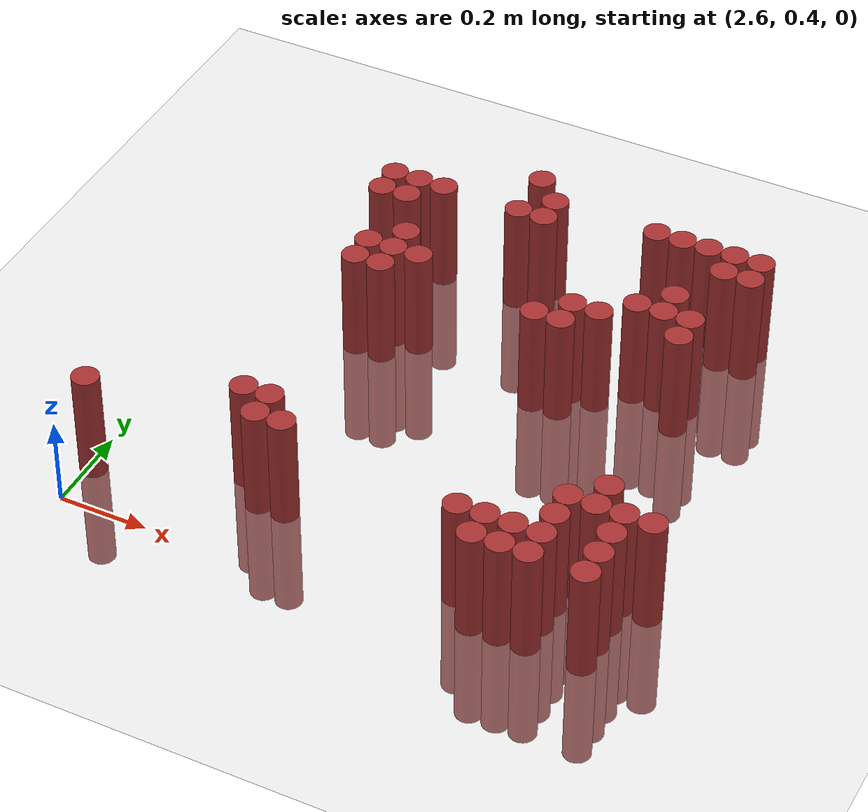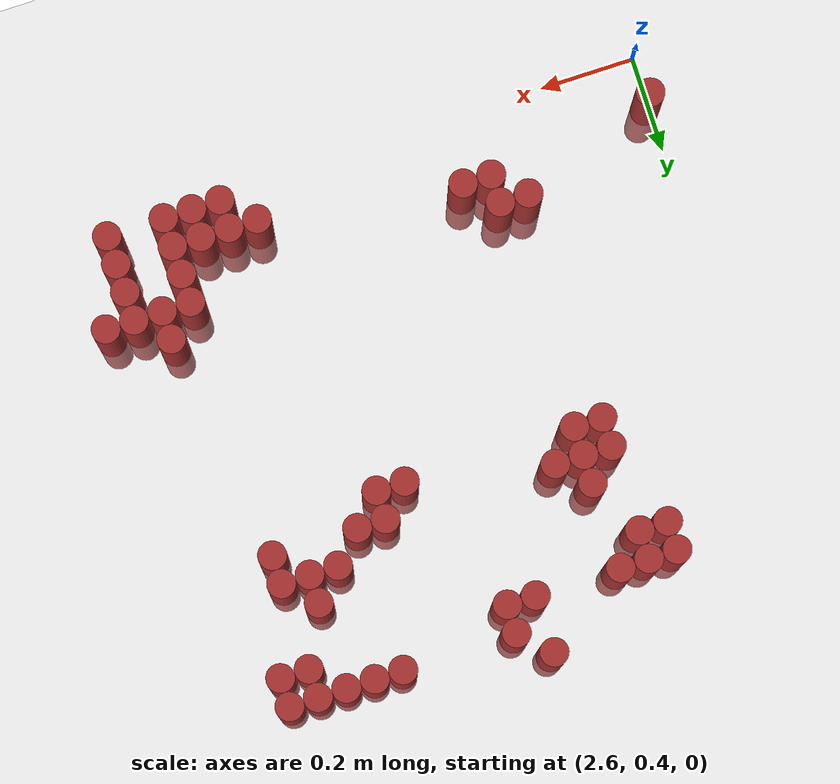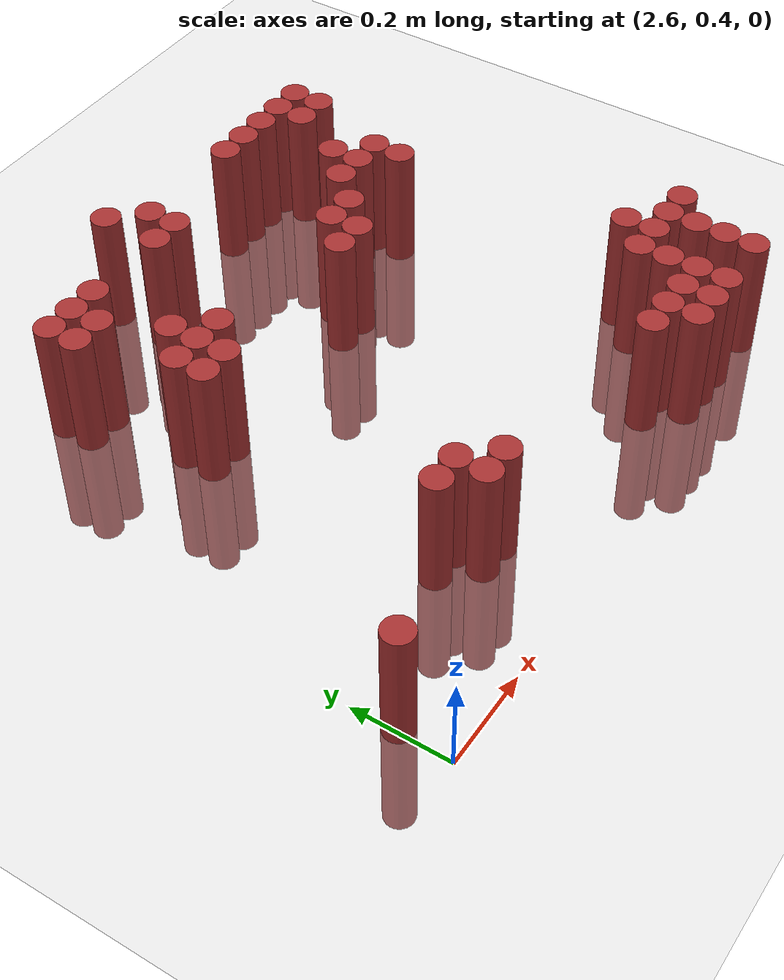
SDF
<sdf version="1.6">
 <world name="default">
  <model name="ground_plane">
   <static>1</static>
   <link name="link">
    <collision name="collision">
     <geometry><plane><normal>0 0 1</normal><size>100 100</size></plane></geometry>
     <surface><friction><ode><mu>100</mu><mu2>50</mu2></ode></friction></surface>
    </collision>
    <visual name="visual">
     <cast_shadows>0</cast_shadows>
     <geometry><plane><normal>0 0 1</normal><size>100 100</size></plane></geometry>
     <material>
      <script><uri>file://media/materials/scripts/gazebo.material</uri><name>Gazebo/Grey</name></script>
     </material>
    </visual>
   </link>
  </model>
  <model name="unit_cylinder_156">
   <static>1</static>
   <pose>3.150000 1.530000 0.000000 0.000000 0.000000 0.000000</pose>
   <link name="link">
    <inertial>
     <mass>1</mass>
     <inertia><ixx>0.145833</ixx><ixy>0</ixy><ixz>0</ixz><iyy>0.145833</iyy><iyz>0</iyz><izz>0.125</izz></inertia>
    </inertial>
    <collision name="collision">
     <geometry><cylinder><radius>0.030000</radius><length>0.5</length></cylinder></geometry>
    </collision>
    <visual name="visual">
     <geometry><cylinder><radius>0.030000</radius><length>0.5</length></cylinder></geometry>
     <material>
      <ambient>0.648000 0.192000 0.192000 1</ambient>
      <diffuse>0.648000 0.192000 0.192000 1</diffuse>
     </material>
     <material>
      <script><name>Gazebo/Grey</name><uri>file://media/materials/scripts/gazebo.material</uri></script>
     </material>
    </visual>
   </link>
  </model>
  <model name="unit_cylinder_165">
   <static>1</static>
   <pose>3.210000 1.470000 0.000000 0.000000 0.000000 0.000000</pose>
   <link name="link">
    <inertial>
     <mass>1</mass>
     <inertia><ixx>0.145833</ixx><ixy>0</ixy><ixz>0</ixz><iyy>0.145833</iyy><iyz>0</iyz><izz>0.125</izz></inertia>
    </inertial>
    <collision name="collision">
     <geometry><cylinder><radius>0.030000</radius><length>0.5</length></cylinder></geometry>
    </collision>
    <visual name="visual">
     <geometry><cylinder><radius>0.030000</radius><length>0.5</length></cylinder></geometry>
     <material>
      <ambient>0.648000 0.192000 0.192000 1</ambient>
      <diffuse>0.648000 0.192000 0.192000 1</diffuse>
     </material>
     <material>
      <script><name>Gazebo/Grey</name><uri>file://media/materials/scripts/gazebo.material</uri></script>
     </material>
    </visual>
   </link>
  </model>
  <model name="unit_cylinder_166">
   <static>1</static>
   <pose>3.450000 1.470000 0.000000 0.000000 0.000000 0.000000</pose>
   <link name="link">
    <inertial>
     <mass>1</mass>
     <inertia><ixx>0.145833</ixx><ixy>0</ixy><ixz>0</ixz><iyy>0.145833</iyy><iyz>0</iyz><izz>0.125</izz></inertia>
    </inertial>
    <collision name="collision">
     <geometry><cylinder><radius>0.030000</radius><length>0.5</length></cylinder></geometry>
    </collision>
    <visual name="visual">
     <geometry><cylinder><radius>0.030000</radius><length>0.5</length></cylinder></geometry>
     <material>
      <ambient>0.648000 0.192000 0.192000 1</ambient>
      <diffuse>0.648000 0.192000 0.192000 1</diffuse>
     </material>
     <material>
      <script><name>Gazebo/Grey</name><uri>file://media/materials/scripts/gazebo.material</uri></script>
     </material>
    </visual>
   </link>
  </model>
  <model name="unit_cylinder_167">
   <static>1</static>
   <pose>3.510000 1.470000 0.000000 0.000000 0.000000 0.000000</pose>
   <link name="link">
    <inertial>
     <mass>1</mass>
     <inertia><ixx>0.145833</ixx><ixy>0</ixy><ixz>0</ixz><iyy>0.145833</iyy><iyz>0</iyz><izz>0.125</izz></inertia>
    </inertial>
    <collision name="collision">
     <geometry><cylinder><radius>0.030000</radius><length>0.5</length></cylinder></geometry>
    </collision>
    <visual name="visual">
     <geometry><cylinder><radius>0.030000</radius><length>0.5</length></cylinder></geometry>
     <material>
      <ambient>0.648000 0.192000 0.192000 1</ambient>
      <diffuse>0.648000 0.192000 0.192000 1</diffuse>
     </material>
     <material>
      <script><name>Gazebo/Grey</name><uri>file://media/materials/scripts/gazebo.material</uri></script>
     </material>
    </visual>
   </link>
  </model>
  <model name="unit_cylinder_168">
   <static>1</static>
   <pose>3.570000 1.470000 0.000000 0.000000 0.000000 0.000000</pose>
   <link name="link">
    <inertial>
     <mass>1</mass>
     <inertia><ixx>0.145833</ixx><ixy>0</ixy><ixz>0</ixz><iyy>0.145833</iyy><iyz>0</iyz><izz>0.125</izz></inertia>
    </inertial>
    <collision name="collision">
     <geometry><cylinder><radius>0.030000</radius><length>0.5</length></cylinder></geometry>
    </collision>
    <visual name="visual">
     <geometry><cylinder><radius>0.030000</radius><length>0.5</length></cylinder></geometry>
     <material>
      <ambient>0.648000 0.192000 0.192000 1</ambient>
      <diffuse>0.648000 0.192000 0.192000 1</diffuse>
     </material>
     <material>
      <script><name>Gazebo/Grey</name><uri>file://media/materials/scripts/gazebo.material</uri></script>
     </material>
    </visual>
   </link>
  </model>
  <model name="unit_cylinder_169">
   <static>1</static>
   <pose>3.630000 1.470000 0.000000 0.000000 0.000000 0.000000</pose>
   <link name="link">
    <inertial>
     <mass>1</mass>
     <inertia><ixx>0.145833</ixx><ixy>0</ixy><ixz>0</ixz><iyy>0.145833</iyy><iyz>0</iyz><izz>0.125</izz></inertia>
    </inertial>
    <collision name="collision">
     <geometry><cylinder><radius>0.030000</radius><length>0.5</length></cylinder></geometry>
    </collision>
    <visual name="visual">
     <geometry><cylinder><radius>0.030000</radius><length>0.5</length></cylinder></geometry>
     <material>
      <ambient>0.648000 0.192000 0.192000 1</ambient>
      <diffuse>0.648000 0.192000 0.192000 1</diffuse>
     </material>
     <material>
      <script><name>Gazebo/Grey</name><uri>file://media/materials/scripts/gazebo.material</uri></script>
     </material>
    </visual>
   </link>
  </model>
  <model name="unit_cylinder_170">
   <static>1</static>
   <pose>3.690000 1.470000 0.000000 0.000000 0.000000 0.000000</pose>
   <link name="link">
    <inertial>
     <mass>1</mass>
     <inertia><ixx>0.145833</ixx><ixy>0</ixy><ixz>0</ixz><iyy>0.145833</iyy><iyz>0</iyz><izz>0.125</izz></inertia>
    </inertial>
    <collision name="collision">
     <geometry><cylinder><radius>0.030000</radius><length>0.5</length></cylinder></geometry>
    </collision>
    <visual name="visual">
     <geometry><cylinder><radius>0.030000</radius><length>0.5</length></cylinder></geometry>
     <material>
      <ambient>0.648000 0.192000 0.192000 1</ambient>
      <diffuse>0.648000 0.192000 0.192000 1</diffuse>
     </material>
     <material>
      <script><name>Gazebo/Grey</name><uri>file://media/materials/scripts/gazebo.material</uri></script>
     </material>
    </visual>
   </link>
  </model>
  <model name="unit_cylinder_172">
   <static>1</static>
   <pose>2.850000 1.410000 0.000000 0.000000 0.000000 0.000000</pose>
   <link name="link">
    <inertial>
     <mass>1</mass>
     <inertia><ixx>0.145833</ixx><ixy>0</ixy><ixz>0</ixz><iyy>0.145833</iyy><iyz>0</iyz><izz>0.125</izz></inertia>
    </inertial>
    <collision name="collision">
     <geometry><cylinder><radius>0.030000</radius><length>0.5</length></cylinder></geometry>
    </collision>
    <visual name="visual">
     <geometry><cylinder><radius>0.030000</radius><length>0.5</length></cylinder></geometry>
     <material>
      <ambient>0.648000 0.192000 0.192000 1</ambient>
      <diffuse>0.648000 0.192000 0.192000 1</diffuse>
     </material>
     <material>
      <script><name>Gazebo/Grey</name><uri>file://media/materials/scripts/gazebo.material</uri></script>
     </material>
    </visual>
   </link>
  </model>
  <model name="unit_cylinder_173">
   <static>1</static>
   <pose>2.910000 1.410000 0.000000 0.000000 0.000000 0.000000</pose>
   <link name="link">
    <inertial>
     <mass>1</mass>
     <inertia><ixx>0.145833</ixx><ixy>0</ixy><ixz>0</ixz><iyy>0.145833</iyy><iyz>0</iyz><izz>0.125</izz></inertia>
    </inertial>
    <collision name="collision">
     <geometry><cylinder><radius>0.030000</radius><length>0.5</length></cylinder></geometry>
    </collision>
    <visual name="visual">
     <geometry><cylinder><radius>0.030000</radius><length>0.5</length></cylinder></geometry>
     <material>
      <ambient>0.648000 0.192000 0.192000 1</ambient>
      <diffuse>0.648000 0.192000 0.192000 1</diffuse>
     </material>
     <material>
      <script><name>Gazebo/Grey</name><uri>file://media/materials/scripts/gazebo.material</uri></script>
     </material>
    </visual>
   </link>
  </model>
  <model name="unit_cylinder_174">
   <static>1</static>
   <pose>2.970000 1.410000 0.000000 0.000000 0.000000 0.000000</pose>
   <link name="link">
    <inertial>
     <mass>1</mass>
     <inertia><ixx>0.145833</ixx><ixy>0</ixy><ixz>0</ixz><iyy>0.145833</iyy><iyz>0</iyz><izz>0.125</izz></inertia>
    </inertial>
    <collision name="collision">
     <geometry><cylinder><radius>0.030000</radius><length>0.5</length></cylinder></geometry>
    </collision>
    <visual name="visual">
     <geometry><cylinder><radius>0.030000</radius><length>0.5</length></cylinder></geometry>
     <material>
      <ambient>0.648000 0.192000 0.192000 1</ambient>
      <diffuse>0.648000 0.192000 0.192000 1</diffuse>
     </material>
     <material>
      <script><name>Gazebo/Grey</name><uri>file://media/materials/scripts/gazebo.material</uri></script>
     </material>
    </visual>
   </link>
  </model>
  <model name="unit_cylinder_175">
   <static>1</static>
   <pose>3.150000 1.410000 0.000000 0.000000 0.000000 0.000000</pose>
   <link name="link">
    <inertial>
     <mass>1</mass>
     <inertia><ixx>0.145833</ixx><ixy>0</ixy><ixz>0</ixz><iyy>0.145833</iyy><iyz>0</iyz><izz>0.125</izz></inertia>
    </inertial>
    <collision name="collision">
     <geometry><cylinder><radius>0.030000</radius><length>0.5</length></cylinder></geometry>
    </collision>
    <visual name="visual">
     <geometry><cylinder><radius>0.030000</radius><length>0.5</length></cylinder></geometry>
     <material>
      <ambient>0.648000 0.192000 0.192000 1</ambient>
      <diffuse>0.648000 0.192000 0.192000 1</diffuse>
     </material>
     <material>
      <script><name>Gazebo/Grey</name><uri>file://media/materials/scripts/gazebo.material</uri></script>
     </material>
    </visual>
   </link>
  </model>
  <model name="unit_cylinder_176">
   <static>1</static>
   <pose>3.210000 1.410000 0.000000 0.000000 0.000000 0.000000</pose>
   <link name="link">
    <inertial>
     <mass>1</mass>
     <inertia><ixx>0.145833</ixx><ixy>0</ixy><ixz>0</ixz><iyy>0.145833</iyy><iyz>0</iyz><izz>0.125</izz></inertia>
    </inertial>
    <collision name="collision">
     <geometry><cylinder><radius>0.030000</radius><length>0.5</length></cylinder></geometry>
    </collision>
    <visual name="visual">
     <geometry><cylinder><radius>0.030000</radius><length>0.5</length></cylinder></geometry>
     <material>
      <ambient>0.648000 0.192000 0.192000 1</ambient>
      <diffuse>0.648000 0.192000 0.192000 1</diffuse>
     </material>
     <material>
      <script><name>Gazebo/Grey</name><uri>file://media/materials/scripts/gazebo.material</uri></script>
     </material>
    </visual>
   </link>
  </model>
  <model name="unit_cylinder_177">
   <static>1</static>
   <pose>3.630000 1.410000 0.000000 0.000000 0.000000 0.000000</pose>
   <link name="link">
    <inertial>
     <mass>1</mass>
     <inertia><ixx>0.145833</ixx><ixy>0</ixy><ixz>0</ixz><iyy>0.145833</iyy><iyz>0</iyz><izz>0.125</izz></inertia>
    </inertial>
    <collision name="collision">
     <geometry><cylinder><radius>0.030000</radius><length>0.5</length></cylinder></geometry>
    </collision>
    <visual name="visual">
     <geometry><cylinder><radius>0.030000</radius><length>0.5</length></cylinder></geometry>
     <material>
      <ambient>0.648000 0.192000 0.192000 1</ambient>
      <diffuse>0.648000 0.192000 0.192000 1</diffuse>
     </material>
     <material>
      <script><name>Gazebo/Grey</name><uri>file://media/materials/scripts/gazebo.material</uri></script>
     </material>
    </visual>
   </link>
  </model>
  <model name="unit_cylinder_178">
   <static>1</static>
   <pose>3.690000 1.410000 0.000000 0.000000 0.000000 0.000000</pose>
   <link name="link">
    <inertial>
     <mass>1</mass>
     <inertia><ixx>0.145833</ixx><ixy>0</ixy><ixz>0</ixz><iyy>0.145833</iyy><iyz>0</iyz><izz>0.125</izz></inertia>
    </inertial>
    <collision name="collision">
     <geometry><cylinder><radius>0.030000</radius><length>0.5</length></cylinder></geometry>
    </collision>
    <visual name="visual">
     <geometry><cylinder><radius>0.030000</radius><length>0.5</length></cylinder></geometry>
     <material>
      <ambient>0.648000 0.192000 0.192000 1</ambient>
      <diffuse>0.648000 0.192000 0.192000 1</diffuse>
     </material>
     <material>
      <script><name>Gazebo/Grey</name><uri>file://media/materials/scripts/gazebo.material</uri></script>
     </material>
    </visual>
   </link>
  </model>
  <model name="unit_cylinder_179">
   <static>1</static>
   <pose>2.850000 1.350000 0.000000 0.000000 0.000000 0.000000</pose>
   <link name="link">
    <inertial>
     <mass>1</mass>
     <inertia><ixx>0.145833</ixx><ixy>0</ixy><ixz>0</ixz><iyy>0.145833</iyy><iyz>0</iyz><izz>0.125</izz></inertia>
    </inertial>
    <collision name="collision">
     <geometry><cylinder><radius>0.030000</radius><length>0.5</length></cylinder></geometry>
    </collision>
    <visual name="visual">
     <geometry><cylinder><radius>0.030000</radius><length>0.5</length></cylinder></geometry>
     <material>
      <ambient>0.648000 0.192000 0.192000 1</ambient>
      <diffuse>0.648000 0.192000 0.192000 1</diffuse>
     </material>
     <material>
      <script><name>Gazebo/Grey</name><uri>file://media/materials/scripts/gazebo.material</uri></script>
     </material>
    </visual>
   </link>
  </model>
  <model name="unit_cylinder_180">
   <static>1</static>
   <pose>2.910000 1.350000 0.000000 0.000000 0.000000 0.000000</pose>
   <link name="link">
    <inertial>
     <mass>1</mass>
     <inertia><ixx>0.145833</ixx><ixy>0</ixy><ixz>0</ixz><iyy>0.145833</iyy><iyz>0</iyz><izz>0.125</izz></inertia>
    </inertial>
    <collision name="collision">
     <geometry><cylinder><radius>0.030000</radius><length>0.5</length></cylinder></geometry>
    </collision>
    <visual name="visual">
     <geometry><cylinder><radius>0.030000</radius><length>0.5</length></cylinder></geometry>
     <material>
      <ambient>0.648000 0.192000 0.192000 1</ambient>
      <diffuse>0.648000 0.192000 0.192000 1</diffuse>
     </material>
     <material>
      <script><name>Gazebo/Grey</name><uri>file://media/materials/scripts/gazebo.material</uri></script>
     </material>
    </visual>
   </link>
  </model>
  <model name="unit_cylinder_181">
   <static>1</static>
   <pose>3.570000 1.290000 0.000000 0.000000 0.000000 0.000000</pose>
   <link name="link">
    <inertial>
     <mass>1</mass>
     <inertia><ixx>0.145833</ixx><ixy>0</ixy><ixz>0</ixz><iyy>0.145833</iyy><iyz>0</iyz><izz>0.125</izz></inertia>
    </inertial>
    <collision name="collision">
     <geometry><cylinder><radius>0.030000</radius><length>0.5</length></cylinder></geometry>
    </collision>
    <visual name="visual">
     <geometry><cylinder><radius>0.030000</radius><length>0.5</length></cylinder></geometry>
     <material>
      <ambient>0.648000 0.192000 0.192000 1</ambient>
      <diffuse>0.648000 0.192000 0.192000 1</diffuse>
     </material>
     <material>
      <script><name>Gazebo/Grey</name><uri>file://media/materials/scripts/gazebo.material</uri></script>
     </material>
    </visual>
   </link>
  </model>
  <model name="unit_cylinder_182">
   <static>1</static>
   <pose>2.970000 1.230000 0.000000 0.000000 0.000000 0.000000</pose>
   <link name="link">
    <inertial>
     <mass>1</mass>
     <inertia><ixx>0.145833</ixx><ixy>0</ixy><ixz>0</ixz><iyy>0.145833</iyy><iyz>0</iyz><izz>0.125</izz></inertia>
    </inertial>
    <collision name="collision">
     <geometry><cylinder><radius>0.030000</radius><length>0.5</length></cylinder></geometry>
    </collision>
    <visual name="visual">
     <geometry><cylinder><radius>0.030000</radius><length>0.5</length></cylinder></geometry>
     <material>
      <ambient>0.648000 0.192000 0.192000 1</ambient>
      <diffuse>0.648000 0.192000 0.192000 1</diffuse>
     </material>
     <material>
      <script><name>Gazebo/Grey</name><uri>file://media/materials/scripts/gazebo.material</uri></script>
     </material>
    </visual>
   </link>
  </model>
  <model name="unit_cylinder_183">
   <static>1</static>
   <pose>3.510000 1.230000 0.000000 0.000000 0.000000 0.000000</pose>
   <link name="link">
    <inertial>
     <mass>1</mass>
     <inertia><ixx>0.145833</ixx><ixy>0</ixy><ixz>0</ixz><iyy>0.145833</iyy><iyz>0</iyz><izz>0.125</izz></inertia>
    </inertial>
    <collision name="collision">
     <geometry><cylinder><radius>0.030000</radius><length>0.5</length></cylinder></geometry>
    </collision>
    <visual name="visual">
     <geometry><cylinder><radius>0.030000</radius><length>0.5</length></cylinder></geometry>
     <material>
      <ambient>0.648000 0.192000 0.192000 1</ambient>
      <diffuse>0.648000 0.192000 0.192000 1</diffuse>
     </material>
     <material>
      <script><name>Gazebo/Grey</name><uri>file://media/materials/scripts/gazebo.material</uri></script>
     </material>
    </visual>
   </link>
  </model>
  <model name="unit_cylinder_184">
   <static>1</static>
   <pose>3.570000 1.230000 0.000000 0.000000 0.000000 0.000000</pose>
   <link name="link">
    <inertial>
     <mass>1</mass>
     <inertia><ixx>0.145833</ixx><ixy>0</ixy><ixz>0</ixz><iyy>0.145833</iyy><iyz>0</iyz><izz>0.125</izz></inertia>
    </inertial>
    <collision name="collision">
     <geometry><cylinder><radius>0.030000</radius><length>0.5</length></cylinder></geometry>
    </collision>
    <visual name="visual">
     <geometry><cylinder><radius>0.030000</radius><length>0.5</length></cylinder></geometry>
     <material>
      <ambient>0.648000 0.192000 0.192000 1</ambient>
      <diffuse>0.648000 0.192000 0.192000 1</diffuse>
     </material>
     <material>
      <script><name>Gazebo/Grey</name><uri>file://media/materials/scripts/gazebo.material</uri></script>
     </material>
    </visual>
   </link>
  </model>
  <model name="unit_cylinder_185">
   <static>1</static>
   <pose>3.630000 1.230000 0.000000 0.000000 0.000000 0.000000</pose>
   <link name="link">
    <inertial>
     <mass>1</mass>
     <inertia><ixx>0.145833</ixx><ixy>0</ixy><ixz>0</ixz><iyy>0.145833</iyy><iyz>0</iyz><izz>0.125</izz></inertia>
    </inertial>
    <collision name="collision">
     <geometry><cylinder><radius>0.030000</radius><length>0.5</length></cylinder></geometry>
    </collision>
    <visual name="visual">
     <geometry><cylinder><radius>0.030000</radius><length>0.5</length></cylinder></geometry>
     <material>
      <ambient>0.648000 0.192000 0.192000 1</ambient>
      <diffuse>0.648000 0.192000 0.192000 1</diffuse>
     </material>
     <material>
      <script><name>Gazebo/Grey</name><uri>file://media/materials/scripts/gazebo.material</uri></script>
     </material>
    </visual>
   </link>
  </model>
  <model name="unit_cylinder_186">
   <static>1</static>
   <pose>2.910000 1.170000 0.000000 0.000000 0.000000 0.000000</pose>
   <link name="link">
    <inertial>
     <mass>1</mass>
     <inertia><ixx>0.145833</ixx><ixy>0</ixy><ixz>0</ixz><iyy>0.145833</iyy><iyz>0</iyz><izz>0.125</izz></inertia>
    </inertial>
    <collision name="collision">
     <geometry><cylinder><radius>0.030000</radius><length>0.5</length></cylinder></geometry>
    </collision>
    <visual name="visual">
     <geometry><cylinder><radius>0.030000</radius><length>0.5</length></cylinder></geometry>
     <material>
      <ambient>0.648000 0.192000 0.192000 1</ambient>
      <diffuse>0.648000 0.192000 0.192000 1</diffuse>
     </material>
     <material>
      <script><name>Gazebo/Grey</name><uri>file://media/materials/scripts/gazebo.material</uri></script>
     </material>
    </visual>
   </link>
  </model>
  <model name="unit_cylinder_187">
   <static>1</static>
   <pose>2.970000 1.170000 0.000000 0.000000 0.000000 0.000000</pose>
   <link name="link">
    <inertial>
     <mass>1</mass>
     <inertia><ixx>0.145833</ixx><ixy>0</ixy><ixz>0</ixz><iyy>0.145833</iyy><iyz>0</iyz><izz>0.125</izz></inertia>
    </inertial>
    <collision name="collision">
     <geometry><cylinder><radius>0.030000</radius><length>0.5</length></cylinder></geometry>
    </collision>
    <visual name="visual">
     <geometry><cylinder><radius>0.030000</radius><length>0.5</length></cylinder></geometry>
     <material>
      <ambient>0.648000 0.192000 0.192000 1</ambient>
      <diffuse>0.648000 0.192000 0.192000 1</diffuse>
     </material>
     <material>
      <script><name>Gazebo/Grey</name><uri>file://media/materials/scripts/gazebo.material</uri></script>
     </material>
    </visual>
   </link>
  </model>
  <model name="unit_cylinder_188">
   <static>1</static>
   <pose>3.030000 1.170000 0.000000 0.000000 0.000000 0.000000</pose>
   <link name="link">
    <inertial>
     <mass>1</mass>
     <inertia><ixx>0.145833</ixx><ixy>0</ixy><ixz>0</ixz><iyy>0.145833</iyy><iyz>0</iyz><izz>0.125</izz></inertia>
    </inertial>
    <collision name="collision">
     <geometry><cylinder><radius>0.030000</radius><length>0.5</length></cylinder></geometry>
    </collision>
    <visual name="visual">
     <geometry><cylinder><radius>0.030000</radius><length>0.5</length></cylinder></geometry>
     <material>
      <ambient>0.648000 0.192000 0.192000 1</ambient>
      <diffuse>0.648000 0.192000 0.192000 1</diffuse>
     </material>
     <material>
      <script><name>Gazebo/Grey</name><uri>file://media/materials/scripts/gazebo.material</uri></script>
     </material>
    </visual>
   </link>
  </model>
  <model name="unit_cylinder_189">
   <static>1</static>
   <pose>3.390000 1.170000 0.000000 0.000000 0.000000 0.000000</pose>
   <link name="link">
    <inertial>
     <mass>1</mass>
     <inertia><ixx>0.145833</ixx><ixy>0</ixy><ixz>0</ixz><iyy>0.145833</iyy><iyz>0</iyz><izz>0.125</izz></inertia>
    </inertial>
    <collision name="collision">
     <geometry><cylinder><radius>0.030000</radius><length>0.5</length></cylinder></geometry>
    </collision>
    <visual name="visual">
     <geometry><cylinder><radius>0.030000</radius><length>0.5</length></cylinder></geometry>
     <material>
      <ambient>0.648000 0.192000 0.192000 1</ambient>
      <diffuse>0.648000 0.192000 0.192000 1</diffuse>
     </material>
     <material>
      <script><name>Gazebo/Grey</name><uri>file://media/materials/scripts/gazebo.material</uri></script>
     </material>
    </visual>
   </link>
  </model>
  <model name="unit_cylinder_190">
   <static>1</static>
   <pose>3.450000 1.170000 0.000000 0.000000 0.000000 0.000000</pose>
   <link name="link">
    <inertial>
     <mass>1</mass>
     <inertia><ixx>0.145833</ixx><ixy>0</ixy><ixz>0</ixz><iyy>0.145833</iyy><iyz>0</iyz><izz>0.125</izz></inertia>
    </inertial>
    <collision name="collision">
     <geometry><cylinder><radius>0.030000</radius><length>0.5</length></cylinder></geometry>
    </collision>
    <visual name="visual">
     <geometry><cylinder><radius>0.030000</radius><length>0.5</length></cylinder></geometry>
     <material>
      <ambient>0.648000 0.192000 0.192000 1</ambient>
      <diffuse>0.648000 0.192000 0.192000 1</diffuse>
     </material>
     <material>
      <script><name>Gazebo/Grey</name><uri>file://media/materials/scripts/gazebo.material</uri></script>
     </material>
    </visual>
   </link>
  </model>
  <model name="unit_cylinder_191">
   <static>1</static>
   <pose>3.630000 1.170000 0.000000 0.000000 0.000000 0.000000</pose>
   <link name="link">
    <inertial>
     <mass>1</mass>
     <inertia><ixx>0.145833</ixx><ixy>0</ixy><ixz>0</ixz><iyy>0.145833</iyy><iyz>0</iyz><izz>0.125</izz></inertia>
    </inertial>
    <collision name="collision">
     <geometry><cylinder><radius>0.030000</radius><length>0.5</length></cylinder></geometry>
    </collision>
    <visual name="visual">
     <geometry><cylinder><radius>0.030000</radius><length>0.5</length></cylinder></geometry>
     <material>
      <ambient>0.648000 0.192000 0.192000 1</ambient>
      <diffuse>0.648000 0.192000 0.192000 1</diffuse>
     </material>
     <material>
      <script><name>Gazebo/Grey</name><uri>file://media/materials/scripts/gazebo.material</uri></script>
     </material>
    </visual>
   </link>
  </model>
  <model name="unit_cylinder_192">
   <static>1</static>
   <pose>2.910000 1.110000 0.000000 0.000000 0.000000 0.000000</pose>
   <link name="link">
    <inertial>
     <mass>1</mass>
     <inertia><ixx>0.145833</ixx><ixy>0</ixy><ixz>0</ixz><iyy>0.145833</iyy><iyz>0</iyz><izz>0.125</izz></inertia>
    </inertial>
    <collision name="collision">
     <geometry><cylinder><radius>0.030000</radius><length>0.5</length></cylinder></geometry>
    </collision>
    <visual name="visual">
     <geometry><cylinder><radius>0.030000</radius><length>0.5</length></cylinder></geometry>
     <material>
      <ambient>0.648000 0.192000 0.192000 1</ambient>
      <diffuse>0.648000 0.192000 0.192000 1</diffuse>
     </material>
     <material>
      <script><name>Gazebo/Grey</name><uri>file://media/materials/scripts/gazebo.material</uri></script>
     </material>
    </visual>
   </link>
  </model>
  <model name="unit_cylinder_193">
   <static>1</static>
   <pose>2.970000 1.110000 0.000000 0.000000 0.000000 0.000000</pose>
   <link name="link">
    <inertial>
     <mass>1</mass>
     <inertia><ixx>0.145833</ixx><ixy>0</ixy><ixz>0</ixz><iyy>0.145833</iyy><iyz>0</iyz><izz>0.125</izz></inertia>
    </inertial>
    <collision name="collision">
     <geometry><cylinder><radius>0.030000</radius><length>0.5</length></cylinder></geometry>
    </collision>
    <visual name="visual">
     <geometry><cylinder><radius>0.030000</radius><length>0.5</length></cylinder></geometry>
     <material>
      <ambient>0.648000 0.192000 0.192000 1</ambient>
      <diffuse>0.648000 0.192000 0.192000 1</diffuse>
     </material>
     <material>
      <script><name>Gazebo/Grey</name><uri>file://media/materials/scripts/gazebo.material</uri></script>
     </material>
    </visual>
   </link>
  </model>
  <model name="unit_cylinder_194">
   <static>1</static>
   <pose>3.330000 1.110000 0.000000 0.000000 0.000000 0.000000</pose>
   <link name="link">
    <inertial>
     <mass>1</mass>
     <inertia><ixx>0.145833</ixx><ixy>0</ixy><ixz>0</ixz><iyy>0.145833</iyy><iyz>0</iyz><izz>0.125</izz></inertia>
    </inertial>
    <collision name="collision">
     <geometry><cylinder><radius>0.030000</radius><length>0.5</length></cylinder></geometry>
    </collision>
    <visual name="visual">
     <geometry><cylinder><radius>0.030000</radius><length>0.5</length></cylinder></geometry>
     <material>
      <ambient>0.648000 0.192000 0.192000 1</ambient>
      <diffuse>0.648000 0.192000 0.192000 1</diffuse>
     </material>
     <material>
      <script><name>Gazebo/Grey</name><uri>file://media/materials/scripts/gazebo.material</uri></script>
     </material>
    </visual>
   </link>
  </model>
  <model name="unit_cylinder_195">
   <static>1</static>
   <pose>3.390000 1.110000 0.000000 0.000000 0.000000 0.000000</pose>
   <link name="link">
    <inertial>
     <mass>1</mass>
     <inertia><ixx>0.145833</ixx><ixy>0</ixy><ixz>0</ixz><iyy>0.145833</iyy><iyz>0</iyz><izz>0.125</izz></inertia>
    </inertial>
    <collision name="collision">
     <geometry><cylinder><radius>0.030000</radius><length>0.5</length></cylinder></geometry>
    </collision>
    <visual name="visual">
     <geometry><cylinder><radius>0.030000</radius><length>0.5</length></cylinder></geometry>
     <material>
      <ambient>0.648000 0.192000 0.192000 1</ambient>
      <diffuse>0.648000 0.192000 0.192000 1</diffuse>
     </material>
     <material>
      <script><name>Gazebo/Grey</name><uri>file://media/materials/scripts/gazebo.material</uri></script>
     </material>
    </visual>
   </link>
  </model>
  <model name="unit_cylinder_210">
   <static>1</static>
   <pose>3.690000 0.690000 0.000000 0.000000 0.000000 0.000000</pose>
   <link name="link">
    <inertial>
     <mass>1</mass>
     <inertia><ixx>0.145833</ixx><ixy>0</ixy><ixz>0</ixz><iyy>0.145833</iyy><iyz>0</iyz><izz>0.125</izz></inertia>
    </inertial>
    <collision name="collision">
     <geometry><cylinder><radius>0.030000</radius><length>0.5</length></cylinder></geometry>
    </collision>
    <visual name="visual">
     <geometry><cylinder><radius>0.030000</radius><length>0.5</length></cylinder></geometry>
     <material>
      <ambient>0.648000 0.192000 0.192000 1</ambient>
      <diffuse>0.648000 0.192000 0.192000 1</diffuse>
     </material>
     <material>
      <script><name>Gazebo/Grey</name><uri>file://media/materials/scripts/gazebo.material</uri></script>
     </material>
    </visual>
   </link>
  </model>
  <model name="unit_cylinder_213">
   <static>1</static>
   <pose>2.910000 0.630000 0.000000 0.000000 0.000000 0.000000</pose>
   <link name="link">
    <inertial>
     <mass>1</mass>
     <inertia><ixx>0.145833</ixx><ixy>0</ixy><ixz>0</ixz><iyy>0.145833</iyy><iyz>0</iyz><izz>0.125</izz></inertia>
    </inertial>
    <collision name="collision">
     <geometry><cylinder><radius>0.030000</radius><length>0.5</length></cylinder></geometry>
    </collision>
    <visual name="visual">
     <geometry><cylinder><radius>0.030000</radius><length>0.5</length></cylinder></geometry>
     <material>
      <ambient>0.648000 0.192000 0.192000 1</ambient>
      <diffuse>0.648000 0.192000 0.192000 1</diffuse>
     </material>
     <material>
      <script><name>Gazebo/Grey</name><uri>file://media/materials/scripts/gazebo.material</uri></script>
     </material>
    </visual>
   </link>
  </model>
  <model name="unit_cylinder_214">
   <static>1</static>
   <pose>2.970000 0.630000 0.000000 0.000000 0.000000 0.000000</pose>
   <link name="link">
    <inertial>
     <mass>1</mass>
     <inertia><ixx>0.145833</ixx><ixy>0</ixy><ixz>0</ixz><iyy>0.145833</iyy><iyz>0</iyz><izz>0.125</izz></inertia>
    </inertial>
    <collision name="collision">
     <geometry><cylinder><radius>0.030000</radius><length>0.5</length></cylinder></geometry>
    </collision>
    <visual name="visual">
     <geometry><cylinder><radius>0.030000</radius><length>0.5</length></cylinder></geometry>
     <material>
      <ambient>0.648000 0.192000 0.192000 1</ambient>
      <diffuse>0.648000 0.192000 0.192000 1</diffuse>
     </material>
     <material>
      <script><name>Gazebo/Grey</name><uri>file://media/materials/scripts/gazebo.material</uri></script>
     </material>
    </visual>
   </link>
  </model>
  <model name="unit_cylinder_215">
   <static>1</static>
   <pose>3.630000 0.630000 0.000000 0.000000 0.000000 0.000000</pose>
   <link name="link">
    <inertial>
     <mass>1</mass>
     <inertia><ixx>0.145833</ixx><ixy>0</ixy><ixz>0</ixz><iyy>0.145833</iyy><iyz>0</iyz><izz>0.125</izz></inertia>
    </inertial>
    <collision name="collision">
     <geometry><cylinder><radius>0.030000</radius><length>0.5</length></cylinder></geometry>
    </collision>
    <visual name="visual">
     <geometry><cylinder><radius>0.030000</radius><length>0.5</length></cylinder></geometry>
     <material>
      <ambient>0.648000 0.192000 0.192000 1</ambient>
      <diffuse>0.648000 0.192000 0.192000 1</diffuse>
     </material>
     <material>
      <script><name>Gazebo/Grey</name><uri>file://media/materials/scripts/gazebo.material</uri></script>
     </material>
    </visual>
   </link>
  </model>
  <model name="unit_cylinder_216">
   <static>1</static>
   <pose>3.690000 0.630000 0.000000 0.000000 0.000000 0.000000</pose>
   <link name="link">
    <inertial>
     <mass>1</mass>
     <inertia><ixx>0.145833</ixx><ixy>0</ixy><ixz>0</ixz><iyy>0.145833</iyy><iyz>0</iyz><izz>0.125</izz></inertia>
    </inertial>
    <collision name="collision">
     <geometry><cylinder><radius>0.030000</radius><length>0.5</length></cylinder></geometry>
    </collision>
    <visual name="visual">
     <geometry><cylinder><radius>0.030000</radius><length>0.5</length></cylinder></geometry>
     <material>
      <ambient>0.648000 0.192000 0.192000 1</ambient>
      <diffuse>0.648000 0.192000 0.192000 1</diffuse>
     </material>
     <material>
      <script><name>Gazebo/Grey</name><uri>file://media/materials/scripts/gazebo.material</uri></script>
     </material>
    </visual>
   </link>
  </model>
  <model name="unit_cylinder_217">
   <static>1</static>
   <pose>3.750000 0.630000 0.000000 0.000000 0.000000 0.000000</pose>
   <link name="link">
    <inertial>
     <mass>1</mass>
     <inertia><ixx>0.145833</ixx><ixy>0</ixy><ixz>0</ixz><iyy>0.145833</iyy><iyz>0</iyz><izz>0.125</izz></inertia>
    </inertial>
    <collision name="collision">
     <geometry><cylinder><radius>0.030000</radius><length>0.5</length></cylinder></geometry>
    </collision>
    <visual name="visual">
     <geometry><cylinder><radius>0.030000</radius><length>0.5</length></cylinder></geometry>
     <material>
      <ambient>0.648000 0.192000 0.192000 1</ambient>
      <diffuse>0.648000 0.192000 0.192000 1</diffuse>
     </material>
     <material>
      <script><name>Gazebo/Grey</name><uri>file://media/materials/scripts/gazebo.material</uri></script>
     </material>
    </visual>
   </link>
  </model>
  <model name="unit_cylinder_218">
   <static>1</static>
   <pose>3.810000 0.630000 0.000000 0.000000 0.000000 0.000000</pose>
   <link name="link">
    <inertial>
     <mass>1</mass>
     <inertia><ixx>0.145833</ixx><ixy>0</ixy><ixz>0</ixz><iyy>0.145833</iyy><iyz>0</iyz><izz>0.125</izz></inertia>
    </inertial>
    <collision name="collision">
     <geometry><cylinder><radius>0.030000</radius><length>0.5</length></cylinder></geometry>
    </collision>
    <visual name="visual">
     <geometry><cylinder><radius>0.030000</radius><length>0.5</length></cylinder></geometry>
     <material>
      <ambient>0.648000 0.192000 0.192000 1</ambient>
      <diffuse>0.648000 0.192000 0.192000 1</diffuse>
     </material>
     <material>
      <script><name>Gazebo/Grey</name><uri>file://media/materials/scripts/gazebo.material</uri></script>
     </material>
    </visual>
   </link>
  </model>
  <model name="unit_cylinder_219">
   <static>1</static>
   <pose>2.970000 0.570000 0.000000 0.000000 0.000000 0.000000</pose>
   <link name="link">
    <inertial>
     <mass>1</mass>
     <inertia><ixx>0.145833</ixx><ixy>0</ixy><ixz>0</ixz><iyy>0.145833</iyy><iyz>0</iyz><izz>0.125</izz></inertia>
    </inertial>
    <collision name="collision">
     <geometry><cylinder><radius>0.030000</radius><length>0.5</length></cylinder></geometry>
    </collision>
    <visual name="visual">
     <geometry><cylinder><radius>0.030000</radius><length>0.5</length></cylinder></geometry>
     <material>
      <ambient>0.648000 0.192000 0.192000 1</ambient>
      <diffuse>0.648000 0.192000 0.192000 1</diffuse>
     </material>
     <material>
      <script><name>Gazebo/Grey</name><uri>file://media/materials/scripts/gazebo.material</uri></script>
     </material>
    </visual>
   </link>
  </model>
  <model name="unit_cylinder_220">
   <static>1</static>
   <pose>3.030000 0.570000 0.000000 0.000000 0.000000 0.000000</pose>
   <link name="link">
    <inertial>
     <mass>1</mass>
     <inertia><ixx>0.145833</ixx><ixy>0</ixy><ixz>0</ixz><iyy>0.145833</iyy><iyz>0</iyz><izz>0.125</izz></inertia>
    </inertial>
    <collision name="collision">
     <geometry><cylinder><radius>0.030000</radius><length>0.5</length></cylinder></geometry>
    </collision>
    <visual name="visual">
     <geometry><cylinder><radius>0.030000</radius><length>0.5</length></cylinder></geometry>
     <material>
      <ambient>0.648000 0.192000 0.192000 1</ambient>
      <diffuse>0.648000 0.192000 0.192000 1</diffuse>
     </material>
     <material>
      <script><name>Gazebo/Grey</name><uri>file://media/materials/scripts/gazebo.material</uri></script>
     </material>
    </visual>
   </link>
  </model>
  <model name="unit_cylinder_221">
   <static>1</static>
   <pose>3.630000 0.570000 0.000000 0.000000 0.000000 0.000000</pose>
   <link name="link">
    <inertial>
     <mass>1</mass>
     <inertia><ixx>0.145833</ixx><ixy>0</ixy><ixz>0</ixz><iyy>0.145833</iyy><iyz>0</iyz><izz>0.125</izz></inertia>
    </inertial>
    <collision name="collision">
     <geometry><cylinder><radius>0.030000</radius><length>0.5</length></cylinder></geometry>
    </collision>
    <visual name="visual">
     <geometry><cylinder><radius>0.030000</radius><length>0.5</length></cylinder></geometry>
     <material>
      <ambient>0.648000 0.192000 0.192000 1</ambient>
      <diffuse>0.648000 0.192000 0.192000 1</diffuse>
     </material>
     <material>
      <script><name>Gazebo/Grey</name><uri>file://media/materials/scripts/gazebo.material</uri></script>
     </material>
    </visual>
   </link>
  </model>
  <model name="unit_cylinder_222">
   <static>1</static>
   <pose>3.750000 0.570000 0.000000 0.000000 0.000000 0.000000</pose>
   <link name="link">
    <inertial>
     <mass>1</mass>
     <inertia><ixx>0.145833</ixx><ixy>0</ixy><ixz>0</ixz><iyy>0.145833</iyy><iyz>0</iyz><izz>0.125</izz></inertia>
    </inertial>
    <collision name="collision">
     <geometry><cylinder><radius>0.030000</radius><length>0.5</length></cylinder></geometry>
    </collision>
    <visual name="visual">
     <geometry><cylinder><radius>0.030000</radius><length>0.5</length></cylinder></geometry>
     <material>
      <ambient>0.648000 0.192000 0.192000 1</ambient>
      <diffuse>0.648000 0.192000 0.192000 1</diffuse>
     </material>
     <material>
      <script><name>Gazebo/Grey</name><uri>file://media/materials/scripts/gazebo.material</uri></script>
     </material>
    </visual>
   </link>
  </model>
  <model name="unit_cylinder_223">
   <static>1</static>
   <pose>2.610000 0.510000 0.000000 0.000000 0.000000 0.000000</pose>
   <link name="link">
    <inertial>
     <mass>1</mass>
     <inertia><ixx>0.145833</ixx><ixy>0</ixy><ixz>0</ixz><iyy>0.145833</iyy><iyz>0</iyz><izz>0.125</izz></inertia>
    </inertial>
    <collision name="collision">
     <geometry><cylinder><radius>0.030000</radius><length>0.5</length></cylinder></geometry>
    </collision>
    <visual name="visual">
     <geometry><cylinder><radius>0.030000</radius><length>0.5</length></cylinder></geometry>
     <material>
      <ambient>0.648000 0.192000 0.192000 1</ambient>
      <diffuse>0.648000 0.192000 0.192000 1</diffuse>
     </material>
     <material>
      <script><name>Gazebo/Grey</name><uri>file://media/materials/scripts/gazebo.material</uri></script>
     </material>
    </visual>
   </link>
  </model>
  <model name="unit_cylinder_224">
   <static>1</static>
   <pose>3.450000 0.510000 0.000000 0.000000 0.000000 0.000000</pose>
   <link name="link">
    <inertial>
     <mass>1</mass>
     <inertia><ixx>0.145833</ixx><ixy>0</ixy><ixz>0</ixz><iyy>0.145833</iyy><iyz>0</iyz><izz>0.125</izz></inertia>
    </inertial>
    <collision name="collision">
     <geometry><cylinder><radius>0.030000</radius><length>0.5</length></cylinder></geometry>
    </collision>
    <visual name="visual">
     <geometry><cylinder><radius>0.030000</radius><length>0.5</length></cylinder></geometry>
     <material>
      <ambient>0.648000 0.192000 0.192000 1</ambient>
      <diffuse>0.648000 0.192000 0.192000 1</diffuse>
     </material>
     <material>
      <script><name>Gazebo/Grey</name><uri>file://media/materials/scripts/gazebo.material</uri></script>
     </material>
    </visual>
   </link>
  </model>
  <model name="unit_cylinder_225">
   <static>1</static>
   <pose>3.510000 0.510000 0.000000 0.000000 0.000000 0.000000</pose>
   <link name="link">
    <inertial>
     <mass>1</mass>
     <inertia><ixx>0.145833</ixx><ixy>0</ixy><ixz>0</ixz><iyy>0.145833</iyy><iyz>0</iyz><izz>0.125</izz></inertia>
    </inertial>
    <collision name="collision">
     <geometry><cylinder><radius>0.030000</radius><length>0.5</length></cylinder></geometry>
    </collision>
    <visual name="visual">
     <geometry><cylinder><radius>0.030000</radius><length>0.5</length></cylinder></geometry>
     <material>
      <ambient>0.648000 0.192000 0.192000 1</ambient>
      <diffuse>0.648000 0.192000 0.192000 1</diffuse>
     </material>
     <material>
      <script><name>Gazebo/Grey</name><uri>file://media/materials/scripts/gazebo.material</uri></script>
     </material>
    </visual>
   </link>
  </model>
  <model name="unit_cylinder_226">
   <static>1</static>
   <pose>3.570000 0.510000 0.000000 0.000000 0.000000 0.000000</pose>
   <link name="link">
    <inertial>
     <mass>1</mass>
     <inertia><ixx>0.145833</ixx><ixy>0</ixy><ixz>0</ixz><iyy>0.145833</iyy><iyz>0</iyz><izz>0.125</izz></inertia>
    </inertial>
    <collision name="collision">
     <geometry><cylinder><radius>0.030000</radius><length>0.5</length></cylinder></geometry>
    </collision>
    <visual name="visual">
     <geometry><cylinder><radius>0.030000</radius><length>0.5</length></cylinder></geometry>
     <material>
      <ambient>0.648000 0.192000 0.192000 1</ambient>
      <diffuse>0.648000 0.192000 0.192000 1</diffuse>
     </material>
     <material>
      <script><name>Gazebo/Grey</name><uri>file://media/materials/scripts/gazebo.material</uri></script>
     </material>
    </visual>
   </link>
  </model>
  <model name="unit_cylinder_227">
   <static>1</static>
   <pose>3.630000 0.510000 0.000000 0.000000 0.000000 0.000000</pose>
   <link name="link">
    <inertial>
     <mass>1</mass>
     <inertia><ixx>0.145833</ixx><ixy>0</ixy><ixz>0</ixz><iyy>0.145833</iyy><iyz>0</iyz><izz>0.125</izz></inertia>
    </inertial>
    <collision name="collision">
     <geometry><cylinder><radius>0.030000</radius><length>0.5</length></cylinder></geometry>
    </collision>
    <visual name="visual">
     <geometry><cylinder><radius>0.030000</radius><length>0.5</length></cylinder></geometry>
     <material>
      <ambient>0.648000 0.192000 0.192000 1</ambient>
      <diffuse>0.648000 0.192000 0.192000 1</diffuse>
     </material>
     <material>
      <script><name>Gazebo/Grey</name><uri>file://media/materials/scripts/gazebo.material</uri></script>
     </material>
    </visual>
   </link>
  </model>
  <model name="unit_cylinder_228">
   <static>1</static>
   <pose>3.750000 0.510000 0.000000 0.000000 0.000000 0.000000</pose>
   <link name="link">
    <inertial>
     <mass>1</mass>
     <inertia><ixx>0.145833</ixx><ixy>0</ixy><ixz>0</ixz><iyy>0.145833</iyy><iyz>0</iyz><izz>0.125</izz></inertia>
    </inertial>
    <collision name="collision">
     <geometry><cylinder><radius>0.030000</radius><length>0.5</length></cylinder></geometry>
    </collision>
    <visual name="visual">
     <geometry><cylinder><radius>0.030000</radius><length>0.5</length></cylinder></geometry>
     <material>
      <ambient>0.648000 0.192000 0.192000 1</ambient>
      <diffuse>0.648000 0.192000 0.192000 1</diffuse>
     </material>
     <material>
      <script><name>Gazebo/Grey</name><uri>file://media/materials/scripts/gazebo.material</uri></script>
     </material>
    </visual>
   </link>
  </model>
  <model name="unit_cylinder_233">
   <static>1</static>
   <pose>3.510000 0.450000 0.000000 0.000000 0.000000 0.000000</pose>
   <link name="link">
    <inertial>
     <mass>1</mass>
     <inertia><ixx>0.145833</ixx><ixy>0</ixy><ixz>0</ixz><iyy>0.145833</iyy><iyz>0</iyz><izz>0.125</izz></inertia>
    </inertial>
    <collision name="collision">
     <geometry><cylinder><radius>0.030000</radius><length>0.5</length></cylinder></geometry>
    </collision>
    <visual name="visual">
     <geometry><cylinder><radius>0.030000</radius><length>0.5</length></cylinder></geometry>
     <material>
      <ambient>0.648000 0.192000 0.192000 1</ambient>
      <diffuse>0.648000 0.192000 0.192000 1</diffuse>
     </material>
     <material>
      <script><name>Gazebo/Grey</name><uri>file://media/materials/scripts/gazebo.material</uri></script>
     </material>
    </visual>
   </link>
  </model>
  <model name="unit_cylinder_234">
   <static>1</static>
   <pose>3.570000 0.450000 0.000000 0.000000 0.000000 0.000000</pose>
   <link name="link">
    <inertial>
     <mass>1</mass>
     <inertia><ixx>0.145833</ixx><ixy>0</ixy><ixz>0</ixz><iyy>0.145833</iyy><iyz>0</iyz><izz>0.125</izz></inertia>
    </inertial>
    <collision name="collision">
     <geometry><cylinder><radius>0.030000</radius><length>0.5</length></cylinder></geometry>
    </collision>
    <visual name="visual">
     <geometry><cylinder><radius>0.030000</radius><length>0.5</length></cylinder></geometry>
     <material>
      <ambient>0.648000 0.192000 0.192000 1</ambient>
      <diffuse>0.648000 0.192000 0.192000 1</diffuse>
     </material>
     <material>
      <script><name>Gazebo/Grey</name><uri>file://media/materials/scripts/gazebo.material</uri></script>
     </material>
    </visual>
   </link>
  </model>
  <model name="unit_cylinder_235">
   <static>1</static>
   <pose>3.630000 0.450000 0.000000 0.000000 0.000000 0.000000</pose>
   <link name="link">
    <inertial>
     <mass>1</mass>
     <inertia><ixx>0.145833</ixx><ixy>0</ixy><ixz>0</ixz><iyy>0.145833</iyy><iyz>0</iyz><izz>0.125</izz></inertia>
    </inertial>
    <collision name="collision">
     <geometry><cylinder><radius>0.030000</radius><length>0.5</length></cylinder></geometry>
    </collision>
    <visual name="visual">
     <geometry><cylinder><radius>0.030000</radius><length>0.5</length></cylinder></geometry>
     <material>
      <ambient>0.648000 0.192000 0.192000 1</ambient>
      <diffuse>0.648000 0.192000 0.192000 1</diffuse>
     </material>
     <material>
      <script><name>Gazebo/Grey</name><uri>file://media/materials/scripts/gazebo.material</uri></script>
     </material>
    </visual>
   </link>
  </model>
  <model name="unit_cylinder_236">
   <static>1</static>
   <pose>3.750000 0.450000 0.000000 0.000000 0.000000 0.000000</pose>
   <link name="link">
    <inertial>
     <mass>1</mass>
     <inertia><ixx>0.145833</ixx><ixy>0</ixy><ixz>0</ixz><iyy>0.145833</iyy><iyz>0</iyz><izz>0.125</izz></inertia>
    </inertial>
    <collision name="collision">
     <geometry><cylinder><radius>0.030000</radius><length>0.5</length></cylinder></geometry>
    </collision>
    <visual name="visual">
     <geometry><cylinder><radius>0.030000</radius><length>0.5</length></cylinder></geometry>
     <material>
      <ambient>0.648000 0.192000 0.192000 1</ambient>
      <diffuse>0.648000 0.192000 0.192000 1</diffuse>
     </material>
     <material>
      <script><name>Gazebo/Grey</name><uri>file://media/materials/scripts/gazebo.material</uri></script>
     </material>
    </visual>
   </link>
  </model>
 </world>
</sdf>
